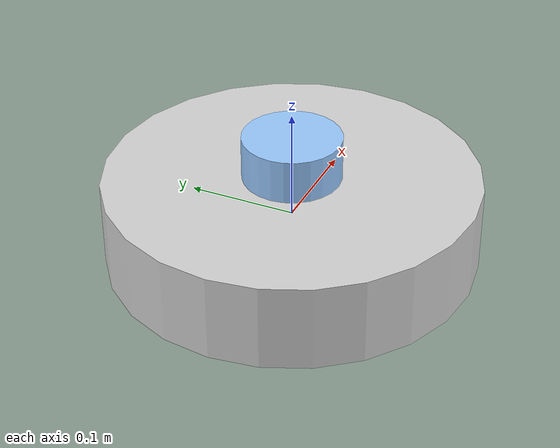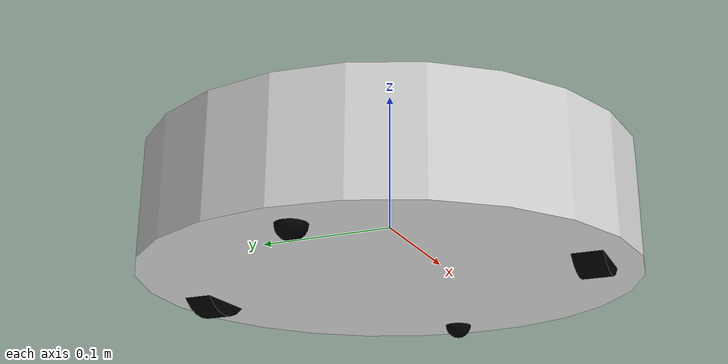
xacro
<?xml version="1.0" ?>
<!-- |    This document was autogenerated by xacro from iRobot.urdf.xacro              | -->
<!-- |    EDITING THIS FILE BY HAND IS NOT RECOMMENDED                                 | -->
<robot name="muvu" xmlns:xacro="http://www.ros.org/wiki/xacro">
  <!-- MODELS -->
  <material name="iRobot/Green">
    <color rgba="0.0 1.0 0.0 1.0"/>
  </material>
  <material name="iRobot/Yellow">
    <color rgba="1.0 1.0 0.0 1.0"/>
  </material>
  <material name="iRobot/LightYellow">
    <color rgba="1.0 1.0 0.6 1.0"/>
  </material>
  <material name="iRobot/Blue">
    <color rgba="0.0 0.0 1.0 1.0"/>
  </material>
  <material name="iRobot/LightBlue">
    <color rgba="0.6 0.79 1.0 1.0"/>
  </material>
  <material name="iRobot/DarkGrey">
    <color rgba="0.31 0.31 0.31 1.0"/>
  </material>
  <material name="iRobot/LightGrey">
    <color rgba="0.83 0.83 0.83 1.0"/>
  </material>
  <material name="iRobot/MediumGrey">
    <color rgba="0.5 0.5 0.5 1.0"/>
  </material>
  <material name="iRobot/Black">
    <color rgba="0.0 0.0 0.0 1.0"/>
  </material>
  <material name="iRobot/Red">
    <color rgba="1.0 0.0 0.0 1.0"/>
  </material>
  <material name="iRobot/Orange">
    <color rgba="1.0 0.65 0.0 1.0"/>
  </material>
  <link name="base_link">
    <inertial>
      <origin rpy="0 0 0" xyz="0 0 0"/>
      <mass value="0"/>
      <inertia ixx="0.0" ixy="0.0" ixz="0.0" iyy="0.0" iyz="0.0" izz="0.0"/>
    </inertial>
  </link>
  <joint name="base_joint" type="fixed">
    <origin rpy="0 0 0" xyz="0 0 0"/>
    <parent link="base_link"/>
    <child link="chassis"/>
  </joint>
  <link name="chassis">
    <inertial>
      <origin rpy="0 0 0" xyz="0 0 0"/>
      <mass value="10"/>
      <inertia ixx="0.425" ixy="0.0" ixz="0.0" iyy="0.425" iyz="0.0" izz="0.85"/>
    </inertial>
    <visual>
      <origin rpy="0 0 0" xyz="0 0 0"/>
      <geometry>
        <cylinder length="0.08" radius="0.17"/>
      </geometry>
      <material name="iRobot/LightGrey"/>
    </visual>
    <collision>
      <origin rpy="0 0 0" xyz="0 0 0"/>
      <geometry>
        <cylinder length="0.08" radius="0.17"/>
      </geometry>
    </collision>
  </link>
  <joint name="left_axis_base_joint" type="fixed">
    <origin rpy="0 0 0" xyz="0 0.14 -0.02"/>
    <parent link="chassis"/>
    <child link="left_axis"/>
  </joint>
  <link name="left_axis">
    <inertial>
      <origin rpy="-1.57079632679 0 0" xyz="0 0 0"/>
      <mass value="0.001"/>
      <inertia ixx="6.25e-07" ixy="0.0" ixz="0.0" iyy="6.25e-07" iyz="0.0" izz="2.08333333333e-07"/>
    </inertial>
    <visual>
      <origin rpy="-1.57079632679 0 0" xyz="0 0 0"/>
      <geometry>
        <cylinder length="0.02" radius="0.0025"/>
      </geometry>
      <material name="iRobot/MediumGray"/>
    </visual>
    <collision>
      <origin rpy="-1.57079632679 0 0" xyz="0 0 0"/>
      <geometry>
        <cylinder length="0.02" radius="0.0025"/>
      </geometry>
    </collision>
  </link>
  <gazebo reference="left_axis_axis">
    <gravity>true</gravity>
    <material>Gazebo/Red</material>
    <mu1>0.8</mu1>
    <mu2>0.8</mu2>
  </gazebo>
  <joint name="left_wheel_rot_joint" type="continuous">
    <origin rpy="0 0 0" xyz="0 0 0"/>
    <axis xyz="0 1 0"/>
    <limit effort="100" velocity="100"/>
    <joint_properties damping="0.0" friction="0.0"/>
    <parent link="left_axis"/>
    <child link="left_wheel_link"/>
  </joint>
  <link name="left_wheel_link">
    <inertial>
      <origin rpy="-1.57079632679 0 0" xyz="0 0.01 0"/>
      <mass value="0.5"/>
      <inertia ixx="0.00375" ixy="0.0" ixz="0.0" iyy="0.00375" iyz="0.0" izz="0.00125"/>
    </inertial>
    <visual>
      <origin rpy="-1.57079632679 0 0" xyz="0 0 0"/>
      <geometry>
        <cylinder length="0.02" radius="0.03"/>
      </geometry>
      <material name="iRobot/Black"/>
    </visual>
    <collision>
      <origin rpy="-1.57079632679 0 0" xyz="0 0 0"/>
      <geometry>
        <cylinder length="0.02" radius="0.03"/>
      </geometry>
    </collision>
  </link>
  <gazebo reference="left_wheel_link">
    <gravity>true</gravity>
    <material>Gazebo/Grey</material>
    <mu1>50</mu1>
    <mu2>10</mu2>
    <kp>10000000</kp>
    <kd>1</kd>
    <fdir1>1 0 0</fdir1>
    <minDepth>0.0001</minDepth>
    <maxContacts>1</maxContacts>
  </gazebo>
  <joint name="right_axis_base_joint" type="fixed">
    <origin rpy="0 0 0" xyz="0 -0.14 -0.02"/>
    <parent link="chassis"/>
    <child link="right_axis"/>
  </joint>
  <link name="right_axis">
    <inertial>
      <origin rpy="-1.57079632679 0 0" xyz="0 0 0"/>
      <mass value="0.001"/>
      <inertia ixx="6.25e-07" ixy="0.0" ixz="0.0" iyy="6.25e-07" iyz="0.0" izz="2.08333333333e-07"/>
    </inertial>
    <visual>
      <origin rpy="-1.57079632679 0 0" xyz="0 0 0"/>
      <geometry>
        <cylinder length="0.02" radius="0.0025"/>
      </geometry>
      <material name="iRobot/MediumGray"/>
    </visual>
    <collision>
      <origin rpy="-1.57079632679 0 0" xyz="0 0 0"/>
      <geometry>
        <cylinder length="0.02" radius="0.0025"/>
      </geometry>
    </collision>
  </link>
  <gazebo reference="right_axis_axis">
    <gravity>true</gravity>
    <material>Gazebo/Red</material>
    <mu1>0.8</mu1>
    <mu2>0.8</mu2>
  </gazebo>
  <joint name="right_wheel_rot_joint" type="continuous">
    <origin rpy="0 0 0" xyz="0 0 0"/>
    <axis xyz="0 1 0"/>
    <limit effort="100" velocity="100"/>
    <joint_properties damping="0.0" friction="0.0"/>
    <parent link="right_axis"/>
    <child link="right_wheel_link"/>
  </joint>
  <link name="right_wheel_link">
    <inertial>
      <origin rpy="-1.57079632679 0 0" xyz="0 0.01 0"/>
      <mass value="0.5"/>
      <inertia ixx="0.00375" ixy="0.0" ixz="0.0" iyy="0.00375" iyz="0.0" izz="0.00125"/>
    </inertial>
    <visual>
      <origin rpy="-1.57079632679 0 0" xyz="0 0 0"/>
      <geometry>
        <cylinder length="0.02" radius="0.03"/>
      </geometry>
      <material name="iRobot/Black"/>
    </visual>
    <collision>
      <origin rpy="-1.57079632679 0 0" xyz="0 0 0"/>
      <geometry>
        <cylinder length="0.02" radius="0.03"/>
      </geometry>
    </collision>
  </link>
  <gazebo reference="right_wheel_link">
    <gravity>true</gravity>
    <material>Gazebo/Grey</material>
    <mu1>50</mu1>
    <mu2>10</mu2>
    <kp>10000000</kp>
    <kd>1</kd>
    <fdir1>1 0 0</fdir1>
    <minDepth>0.0001</minDepth>
    <maxContacts>1</maxContacts>
  </gazebo>
  <joint name="sphere_joint1" type="revolute">
    <origin rpy="0 0 0" xyz="0.14 0 -0.04"/>
    <axis xyz="0 0 1"/>
    <limit effort="100" lower="0" upper="0" velocity="100"/>
    <parent link="chassis"/>
    <child link="sphere1"/>
  </joint>
  <link name="sphere1">
    <inertial>
      <origin rpy="0 0 0" xyz="0 0 0"/>
      <mass value="0.3"/>
      <inertia ixx="0.0012" ixy="0.0" ixz="0.0" iyy="0.0012" iyz="0.0" izz="0.0012"/>
    </inertial>
    <visual>
      <origin rpy="0 0 0" xyz="0 0 0"/>
      <geometry>
        <sphere radius="0.01"/>
      </geometry>
      <material name="iRobot/Black"/>
    </visual>
    <collision>
      <origin rpy="0 0 0" xyz="0 0 0"/>
      <geometry>
        <sphere radius="0.01"/>
      </geometry>
    </collision>
  </link>
  <joint name="sphere_joint2" type="revolute">
    <origin rpy="0 0 0" xyz="-0.14 0 -0.04"/>
    <axis xyz="0 0 1"/>
    <limit effort="100" lower="0" upper="0" velocity="100"/>
    <parent link="chassis"/>
    <child link="sphere2"/>
  </joint>
  <link name="sphere2">
    <inertial>
      <origin rpy="0 0 0" xyz="0 0 0"/>
      <mass value="0.3"/>
      <inertia ixx="0.0012" ixy="0.0" ixz="0.0" iyy="0.0012" iyz="0.0" izz="0.0012"/>
    </inertial>
    <visual>
      <origin rpy="0 0 0" xyz="0 0 0"/>
      <geometry>
        <sphere radius="0.01"/>
      </geometry>
      <material name="iRobot/Black"/>
    </visual>
    <collision>
      <origin rpy="0 0 0" xyz="0 0 0"/>
      <geometry>
        <sphere radius="0.01"/>
      </geometry>
    </collision>
  </link>
  <!-- Laser link and plugin -->
  <joint name="hokuyo_laser_joint" type="fixed">
    <axis xyz="0 0 1"/>
    <origin rpy="0 0 0" xyz="0 0 0.06"/>
    <parent link="base_link"/>
    <child link="hokuyo_laser_link"/>
  </joint>
  <link name="hokuyo_laser_link">
    <collision>
      <origin rpy="0 0 0" xyz="0 0 0"/>
      <geometry>
        <cylinder length="0.04" radius="0.045"/>
      </geometry>
    </collision>
    <visual>
      <origin rpy="0 0 0" xyz="0 0 0"/>
      <geometry>
        <cylinder length="0.04" radius="0.045"/>
      </geometry>
      <material name="iRobot/LightBlue"/>
    </visual>
    <inertial>
      <mass value="1e-5"/>
      <origin rpy="0 0 0" xyz="0 0 0"/>
      <inertia ixx="1e-6" ixy="0" ixz="0" iyy="1e-6" iyz="0" izz="1e-6"/>
    </inertial>
  </link>
  <gazebo reference="hokuyo_laser_link">
    <gravity>true</gravity>
    <sensor name="head_hokuyo_sensor" type="ray">
      <pose>0 0 0 0 0 0</pose>
      <visualize>true</visualize>
      <update_rate>40</update_rate>
      <ray>
        <scan>
          <horizontal>
            <samples>360</samples>
            <resolution>1</resolution>
            <min_angle>-3.141592653589793238</min_angle>
            <max_angle>3.141592653589793238</max_angle>
          </horizontal>
        </scan>
        <range>
          <min>0.2</min>
          <max>40</max>
          <resolution>0.025</resolution>
        </range>
        <noise>
          <type>gaussian</type>
          <mean>0.0</mean>
          <stddev>0.0</stddev>
        </noise>
      </ray>
      <plugin filename="libgazebo_ros_laser.so" name="gazebo_ros_head_hokuyo_controller">
        <robotNamespace/>
        <topicName>/muvu/laser/scan</topicName>
        <frameName>hokuyo_laser_link</frameName>
      </plugin>
    </sensor>
  </gazebo>

  <gazebo reference="base_link">
    </gazebo>
  <gazebo reference="ground">
    </gazebo>
  <gazebo reference="sphere1">
    <gravity>true</gravity>
    <material>Gazebo/Grey</material>
    <mu1>0</mu1>
    <mu2>0</mu2>
    <kp>10000000</kp>
    <kd>1</kd>
    <fdir1>1 0 0</fdir1>
    <minDepth>0.0001</minDepth>
    <maxContacts>1</maxContacts>
  </gazebo>
  <gazebo reference="sphere2">
    <gravity>true</gravity>
    <material>Gazebo/Grey</material>
    <mu1>0</mu1>
    <mu2>0</mu2>
    <kp>10000000</kp>
    <kd>1</kd>
    <fdir1>1 0 0</fdir1>
    <minDepth>0.0001</minDepth>
    <maxContacts>1</maxContacts>
  </gazebo>
  <gazebo reference="chassis">
    <gravity>true</gravity>
    <material>Gazebo/Yellow</material>
  </gazebo>
  <gazebo>
    <static>false</static>
    <plugin filename="libgazebo_ros_diff_drive.so" name="differential_drive_controller">
      <rosDebugLevel>Debug</rosDebugLevel>
      <publishWheelTF>false</publishWheelTF>
      <publishWheelJointState>true</publishWheelJointState>
      <alwaysOn>true</alwaysOn>
      <leftJoint>left_wheel_rot_joint</leftJoint>
      <rightJoint>right_wheel_rot_joint</rightJoint>
      <wheelSeparation>0.28</wheelSeparation>
      <wheelDiameter>0.06</wheelDiameter>
      <torque>20</torque>
      <wheelAcceleration>1.8</wheelAcceleration>
      <robotNamespace>/muvu</robotNamespace>
      <commandTopic>cmd_vel</commandTopic>
      <robotBaseFrame>base_link</robotBaseFrame>
      <updateRate>100.0</updateRate>
    </plugin>
    <plugin filename="libgazebo_ros_joint_state_publisher.so" name="joint_state_publisher">
      <jointName>left_wheel_rot_joint, right_wheel_rot_joint</jointName>
      <updateRate>10.0</updateRate>
      <alwaysOn>true</alwaysOn>
    </plugin>
  </gazebo>
</robot>
